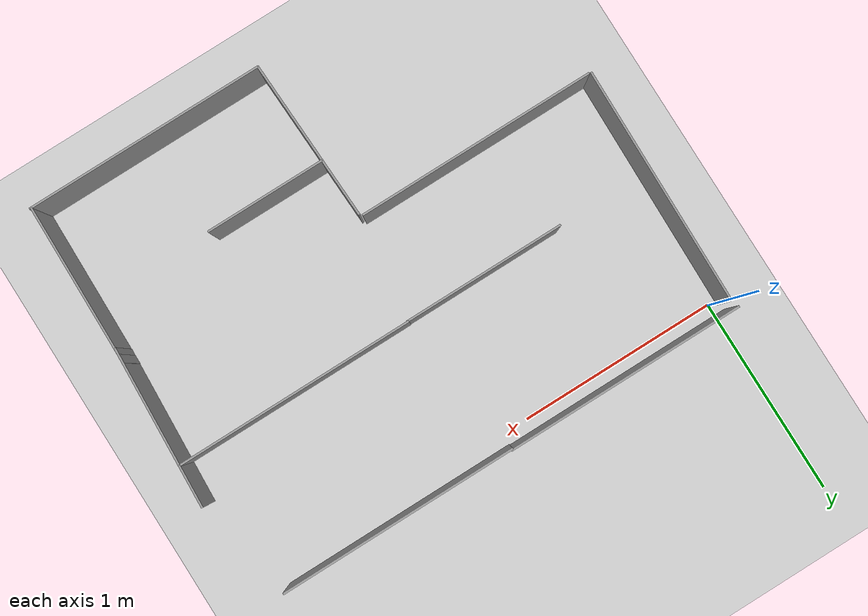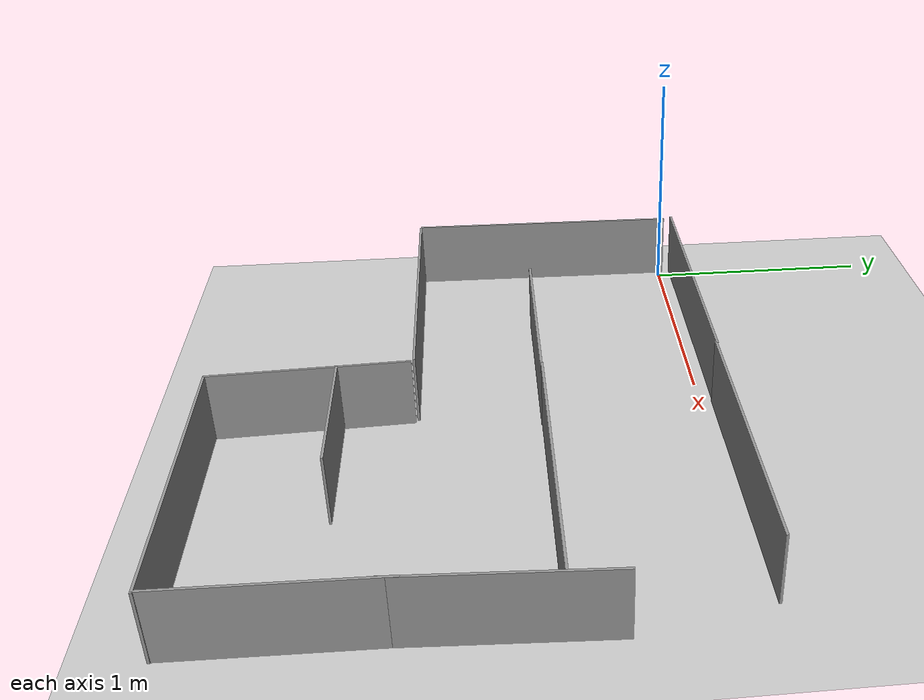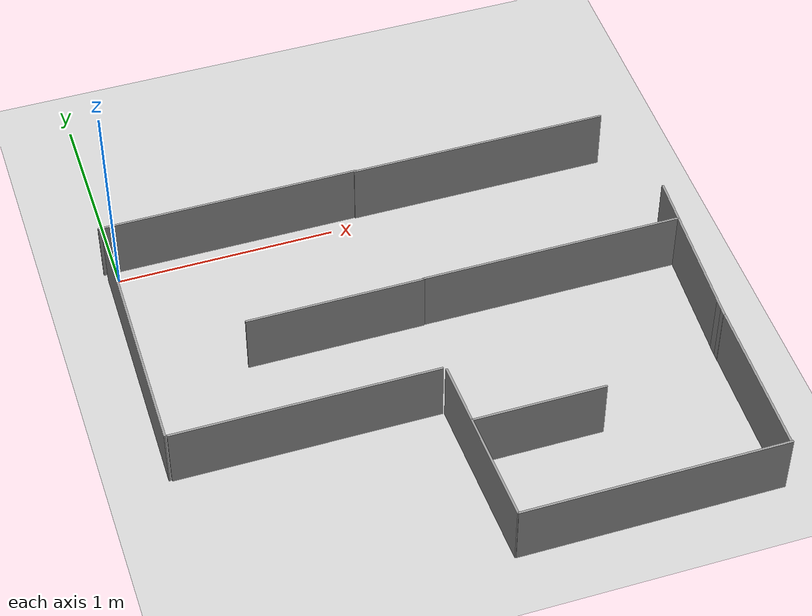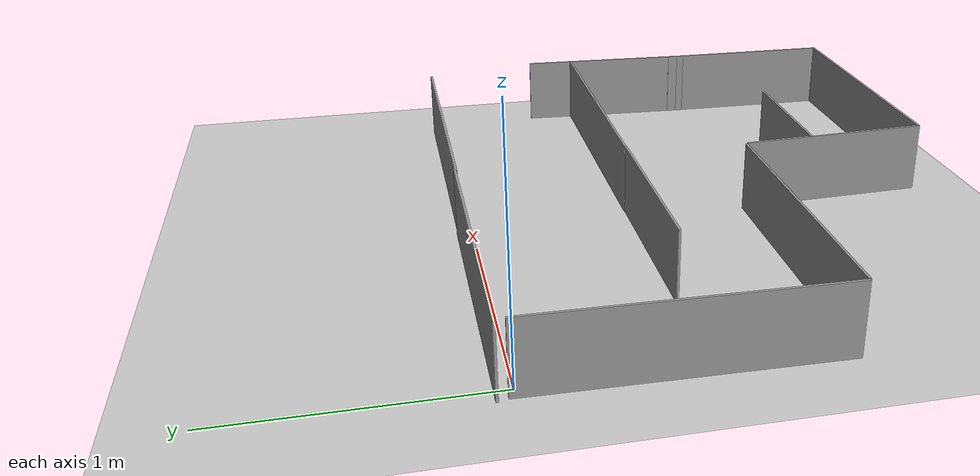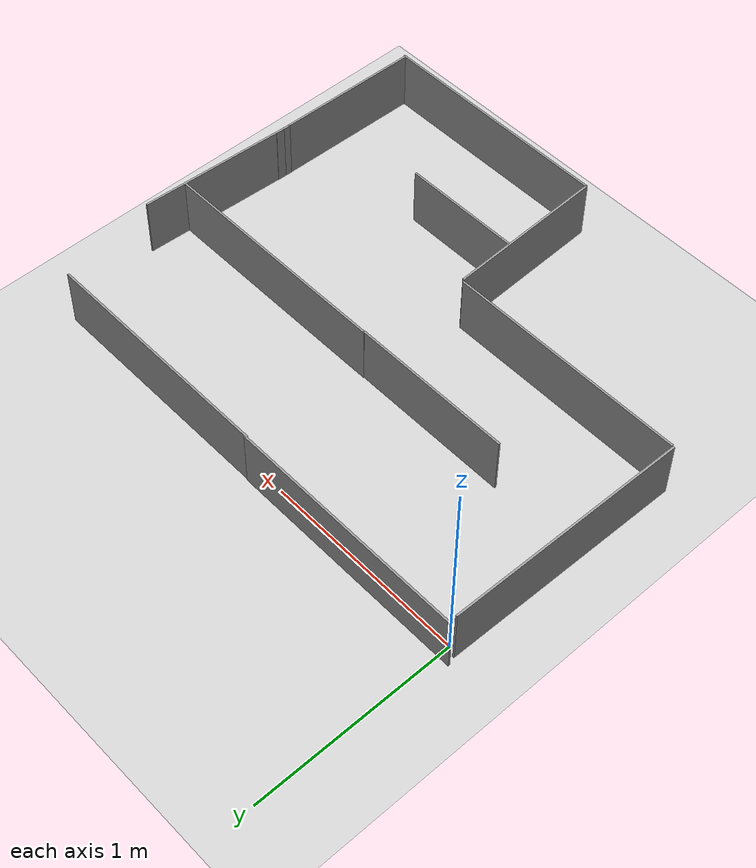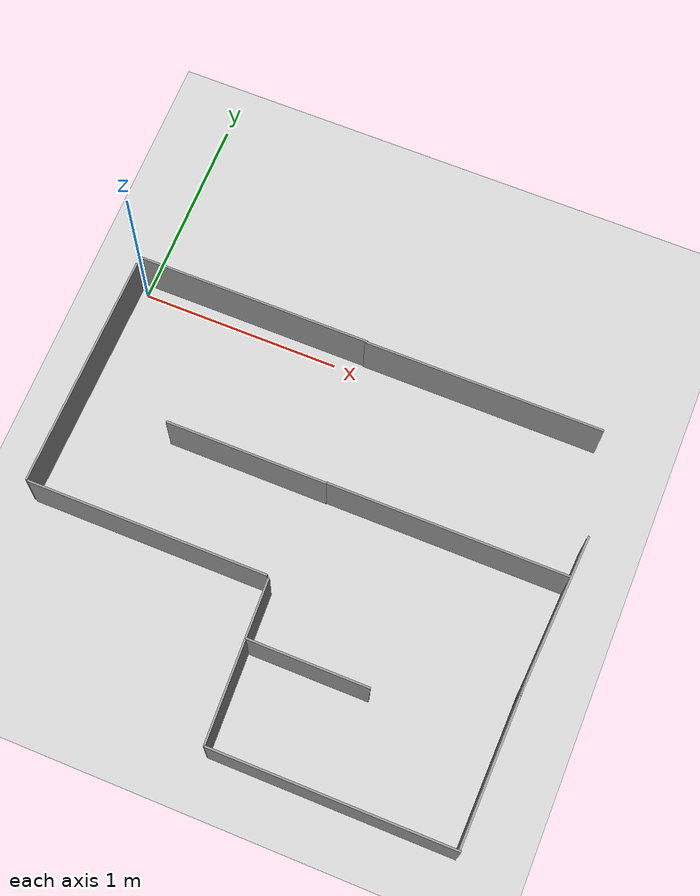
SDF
<sdf version="1.7">
 <world name="default">
  <light name="sun" type="directional">
   <pose>0 0 10 0 -0 0</pose>
   <diffuse>0.8 0.8 0.8 1</diffuse>
   <specular>0.2 0.2 0.2 1</specular>
   <attenuation>
    <range>1000</range>
    <constant>0.9</constant>
    <linear>0.01</linear>
    <quadratic>0.001</quadratic>
   </attenuation>
   <direction>-0.5 0.1 -0.9</direction>
   <spot><inner_angle>0</inner_angle><outer_angle>0</outer_angle><falloff>0</falloff></spot>
  </light>
  <model name="ground_plane">
   <static>1</static>
   <link name="link">
    <collision name="collision">
     <geometry><plane><normal>0 0 1</normal><size>100 100</size></plane></geometry>
     <surface>
      <contact><collide_bitmask>65535</collide_bitmask></contact>
      <friction><ode><mu>100</mu><mu2>50</mu2></ode></friction>
     </surface>
    </collision>
    <visual name="visual">
     <cast_shadows>0</cast_shadows>
     <geometry><plane><normal>0 0 1</normal><size>100 100</size></plane></geometry>
     <material>
      <script><uri>file://media/materials/scripts/gazebo.material</uri><name>Gazebo/Grey</name></script>
     </material>
    </visual>
   </link>
  </model>
  <gravity>0 0 -9.8</gravity>
  <magnetic_field>6e-06 2.3e-05 -4.2e-05</magnetic_field>
  <atmosphere type="adiabatic"/>
  <physics type="ode">
   <max_step_size>0.001</max_step_size>
   <real_time_factor>1</real_time_factor>
   <real_time_update_rate>1000</real_time_update_rate>
  </physics>
  <scene><ambient>0.4 0.4 0.4 1</ambient><background>0.7 0.7 0.7 1</background><shadows>1</shadows></scene>
  <spherical_coordinates>
   <surface_model>EARTH_WGS84</surface_model>
   <latitude_deg>0</latitude_deg>
   <longitude_deg>0</longitude_deg>
   <elevation>0</elevation>
   <heading_deg>0</heading_deg>
  </spherical_coordinates>
  <model name="FUSTA_1.2">
   <pose>1.03446 0.678646 0 0 -0 0</pose>
   <link name="Wall_0">
    <collision name="Wall_0_Collision">
     <geometry><box><size>1.2 0.01 0.3</size></box></geometry>
     <pose>0 0 0.15 0 -0 0</pose>
    </collision>
    <visual name="Wall_0_Visual">
     <pose>0 0 0.15 0 -0 0</pose>
     <geometry><box><size>1.2 0.01 0.3</size></box></geometry>
     <material>
      <script><uri>file://media/materials/scripts/gazebo.material</uri><name>Gazebo/Grey</name></script>
      <ambient>1 1 1 1</ambient>
     </material>
     <meta><layer>0</layer></meta>
    </visual>
    <pose>-0.4925 -0.6175 0 0 -0 0</pose>
   </link>
   <static>1</static>
  </model>
  <model name="FUSTA_1.2_0">
   <pose>2.22351 0.674466 0 0 -0 0</pose>
   <link name="Wall_0">
    <collision name="Wall_0_Collision">
     <geometry><box><size>1.2 0.01 0.3</size></box></geometry>
     <pose>0 0 0.15 0 -0 0</pose>
    </collision>
    <visual name="Wall_0_Visual">
     <pose>0 0 0.15 0 -0 0</pose>
     <geometry><box><size>1.2 0.01 0.3</size></box></geometry>
     <material>
      <script><uri>file://media/materials/scripts/gazebo.material</uri><name>Gazebo/Grey</name></script>
      <ambient>1 1 1 1</ambient>
     </material>
     <meta><layer>0</layer></meta>
    </visual>
    <pose>-0.4925 -0.6175 0 0 -0 0</pose>
   </link>
   <static>1</static>
  </model>
  <model name="FUSTA_1.2_1">
   <pose>0.555952 -1.08 0 0 0 -1.58845</pose>
   <link name="Wall_0">
    <collision name="Wall_0_Collision">
     <geometry><box><size>1.2 0.01 0.3</size></box></geometry>
     <pose>0 0 0.15 0 -0 0</pose>
    </collision>
    <visual name="Wall_0_Visual">
     <pose>0 0 0.15 0 -0 0</pose>
     <geometry><box><size>1.2 0.01 0.3</size></box></geometry>
     <material>
      <script><uri>file://media/materials/scripts/gazebo.material</uri><name>Gazebo/Grey</name></script>
      <ambient>1 1 1 1</ambient>
     </material>
     <meta><layer>0</layer></meta>
    </visual>
    <pose>-0.4925 -0.6175 0 0 -0 0</pose>
   </link>
   <static>1</static>
  </model>
  <model name="FUSTA_1.2_2">
   <pose>1.03746 -0.559603 0 0 -0 0</pose>
   <link name="Wall_0">
    <collision name="Wall_0_Collision">
     <geometry><box><size>1.2 0.01 0.3</size></box></geometry>
     <pose>0 0 0.15 0 -0 0</pose>
    </collision>
    <visual name="Wall_0_Visual">
     <pose>0 0 0.15 0 -0 0</pose>
     <geometry><box><size>1.2 0.01 0.3</size></box></geometry>
     <material>
      <script><uri>file://media/materials/scripts/gazebo.material</uri><name>Gazebo/Grey</name></script>
      <ambient>1 1 1 1</ambient>
     </material>
     <meta><layer>0</layer></meta>
    </visual>
    <pose>-0.4925 -0.6175 0 0 -0 0</pose>
   </link>
   <static>1</static>
  </model>
  <model name="FUSTA_0.9">
   <pose>1.85766 -2.61263 0 0 0 -1.53249</pose>
   <link name="Wall_2">
    <collision name="Wall_2_Collision">
     <geometry><box><size>0.81 0.01 0.3</size></box></geometry>
     <pose>0 0 0.15 0 -0 0</pose>
    </collision>
    <visual name="Wall_2_Visual">
     <pose>0 0 0.15 0 -0 0</pose>
     <geometry><box><size>0.81 0.01 0.3</size></box></geometry>
     <material>
      <script><uri>file://media/materials/scripts/gazebo.material</uri><name>Gazebo/Grey</name></script>
      <ambient>1 1 1 1</ambient>
     </material>
     <meta><layer>0</layer></meta>
    </visual>
    <pose>-1.0475 -0.6475 0 0 -0 0</pose>
   </link>
   <static>1</static>
  </model>
  <model name="FUSTA_0.9_0">
   <pose>1.75716 -0.529036 0 0 -0 1.552</pose>
   <link name="Wall_2">
    <collision name="Wall_2_Collision">
     <geometry><box><size>0.81 0.01 0.3</size></box></geometry>
     <pose>0 0 0.15 0 -0 0</pose>
    </collision>
    <visual name="Wall_2_Visual">
     <pose>0 0 0.15 0 -0 0</pose>
     <geometry><box><size>0.81 0.01 0.3</size></box></geometry>
     <material>
      <script><uri>file://media/materials/scripts/gazebo.material</uri><name>Gazebo/Grey</name></script>
      <ambient>1 1 1 1</ambient>
     </material>
     <meta><layer>0</layer></meta>
    </visual>
    <pose>-1.0475 -0.6475 0 0 -0 0</pose>
   </link>
   <static>1</static>
  </model>
  <model name="FUSTA_1.2_3">
   <pose>2.27896 -1.37571 0 0 -0 0</pose>
   <link name="Wall_0">
    <collision name="Wall_0_Collision">
     <geometry><box><size>1.2 0.01 0.3</size></box></geometry>
     <pose>0 0 0.15 0 -0 0</pose>
    </collision>
    <visual name="Wall_0_Visual">
     <pose>0 0 0.15 0 -0 0</pose>
     <geometry><box><size>1.2 0.01 0.3</size></box></geometry>
     <material>
      <script><uri>file://media/materials/scripts/gazebo.material</uri><name>Gazebo/Grey</name></script>
      <ambient>1 1 1 1</ambient>
     </material>
     <meta><layer>0</layer></meta>
    </visual>
    <pose>-0.4925 -0.6175 0 0 -0 0</pose>
   </link>
   <static>1</static>
  </model>
  <model name="FUSTA_0.9_1">
   <pose>1.82035 0.221916 0 0 -0 1.51768</pose>
   <link name="Wall_2">
    <collision name="Wall_2_Collision">
     <geometry><box><size>0.81 0.01 0.3</size></box></geometry>
     <pose>0 0 0.15 0 -0 0</pose>
    </collision>
    <visual name="Wall_2_Visual">
     <pose>0 0 0.15 0 -0 0</pose>
     <geometry><box><size>0.81 0.01 0.3</size></box></geometry>
     <material>
      <script><uri>file://media/materials/scripts/gazebo.material</uri><name>Gazebo/Grey</name></script>
      <ambient>1 1 1 1</ambient>
     </material>
     <meta><layer>0</layer></meta>
    </visual>
    <pose>-1.0475 -0.6475 0 0 -0 0</pose>
   </link>
   <static>1</static>
  </model>
  <model name="Untitled">
   <pose>3.19412 -0.839256 0 0 -0 0</pose>
   <link name="Wall_4">
    <collision name="Wall_4_Collision">
     <geometry><box><size>0.6 0.01 0.3</size></box></geometry>
     <pose>0 0 0.15 0 -0 0</pose>
    </collision>
    <visual name="Wall_4_Visual">
     <pose>0 0 0.15 0 -0 0</pose>
     <geometry><box><size>0.6 0.01 0.3</size></box></geometry>
     <material>
      <script><uri>file://media/materials/scripts/gazebo.material</uri><name>Gazebo/Grey</name></script>
      <ambient>1 1 1 1</ambient>
     </material>
     <meta><layer>0</layer></meta>
    </visual>
    <pose>-1.7275 -0.6425 0 0 -0 0</pose>
   </link>
   <static>1</static>
  </model>
  <model name="FUSTA_1.2_4">
   <pose>2.31341 -0.049294 0 0 -0 0</pose>
   <link name="Wall_0">
    <collision name="Wall_0_Collision">
     <geometry><box><size>1.2 0.01 0.3</size></box></geometry>
     <pose>0 0 0.15 0 -0 0</pose>
    </collision>
    <visual name="Wall_0_Visual">
     <pose>0 0 0.15 0 -0 0</pose>
     <geometry><box><size>1.2 0.01 0.3</size></box></geometry>
     <material>
      <script><uri>file://media/materials/scripts/gazebo.material</uri><name>Gazebo/Grey</name></script>
      <ambient>1 1 1 1</ambient>
     </material>
     <meta><layer>0</layer></meta>
    </visual>
    <pose>-0.4925 -0.6175 0 0 -0 0</pose>
   </link>
   <static>1</static>
  </model>
  <model name="FUSTA_0.9_2">
   <pose>1.87183 -0.021952 0 0 -0 0</pose>
   <link name="Wall_2">
    <collision name="Wall_2_Collision">
     <geometry><box><size>0.81 0.01 0.3</size></box></geometry>
     <pose>0 0 0.15 0 -0 0</pose>
    </collision>
    <visual name="Wall_2_Visual">
     <pose>0 0 0.15 0 -0 0</pose>
     <geometry><box><size>0.81 0.01 0.3</size></box></geometry>
     <material>
      <script><uri>file://media/materials/scripts/gazebo.material</uri><name>Gazebo/Grey</name></script>
      <ambient>1 1 1 1</ambient>
     </material>
     <meta><layer>0</layer></meta>
    </visual>
    <pose>-1.0475 -0.6475 0 0 -0 0</pose>
   </link>
   <static>1</static>
  </model>
 </world>
</sdf>
